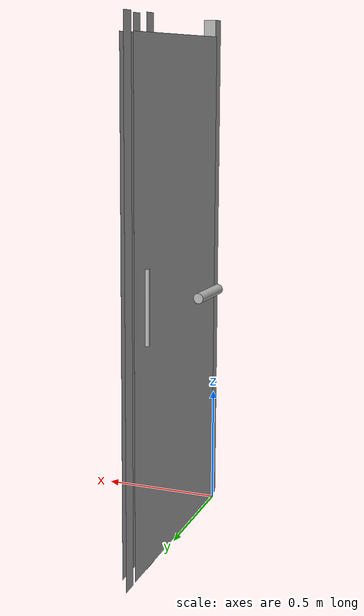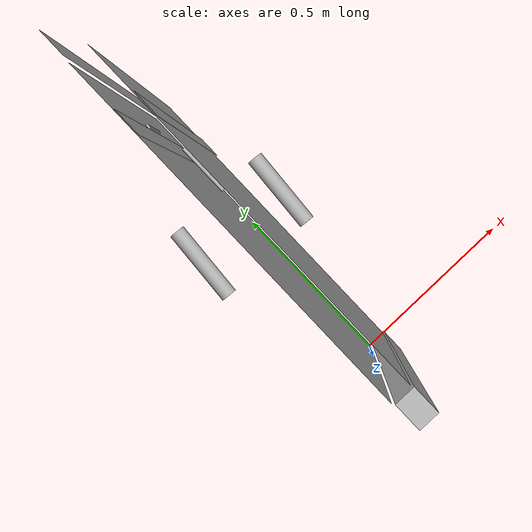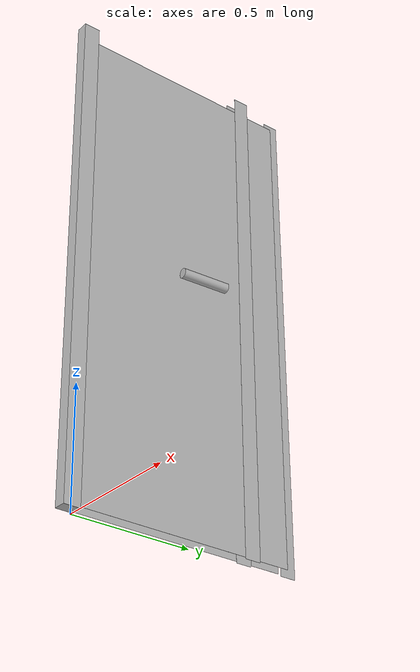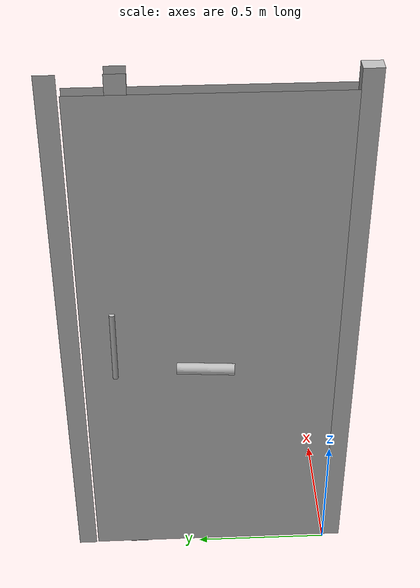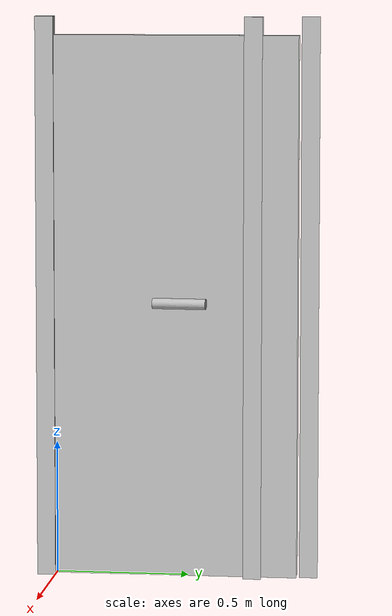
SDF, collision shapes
<?xml version="1.0" ?>
<sdf version="1.5">
  <model name="Hinged_door_narrow">
    <link name="frame">
      <pose>0.06 -0.0005 0 0 0 0</pose>
      <collision name="Door_frame_hinge_side_collison">
        <pose>-0.025145 -0.03429 1.0541 0 0 0</pose>
        <geometry>
          <box>
            <size>0.05029 0.06858 2.10820</size>
          </box>
        </geometry>
      </collision>
      <collision name="Door_frame_lockside_front_collision">
        <pose>-0.05145 0.74631 1.0541 0 0 0</pose>
        <geometry>
          <box>
            <size>0.00005 0.06858 2.10820</size>
          </box>
        </geometry>
      </collision>
      <collision name="Door_frame_lockside_back_collision">
        <pose>0.0 0.74631 1.0541 0 0 0</pose>
        <geometry>
          <box>
            <size>0.00005 0.06858 2.10820</size>
          </box>
        </geometry>
      </collision>
      <collision name="Door_frame_top_collision">
        <pose>-0.05145 0.95631 1.0541 0 0 0</pose>
        <geometry>
          <box>
            <size>0.00005 0.06858 2.10820</size>
          </box>
        </geometry>
      </collision>
      <visual name="visual front">
        <pose>0 -0.06858 0 0 0 0</pose>
        <geometry>
          <mesh>
            <uri>file:///home/jacob/user_ws/src/simulation/tiplu_world/models/Hinged_door_narrow/meshes/frame.dae</uri>
            <scale>1 0.77 1</scale>
          </mesh>
        </geometry>
      </visual>
    </link>
    <link name="door">
      <pose>-0.0 0.000 2.040 3.14159 0 1.57</pose>
      <inertial>
        <mass>41.3256</mass>
        <pose>0.4569 0.0349 1.016 0 0 0</pose>
        <inertia>
          <ixx>14.2053</ixx>
          <ixy>0.0004</ixy>
          <ixz>0.0000</ixz>
          <iyy>17.1997</iyy>
          <iyz>0.0000</iyz>
          <izz>3.0298</izz>
        </inertia>
      </inertial>
      <collision name="door_leaf_side_a_collision">
        <pose>0.4569 0.00349 1.016 0 0 0</pose>
        <geometry>
          <box>
            <size>0.9144 0.00004 2.032</size>
          </box>
        </geometry>
      </collision>
      <collision name="door_leaf_side_b_collision">
        <pose>0.4569 0.0549 1.016 0 0 0</pose>
        <geometry>
          <box>
            <size>0.9144 0.00004 2.032</size>
          </box>
        </geometry>
      </collision>
      <visual name="visual">
        <pose>0 -0.06858 0 0 0 0</pose>
        <geometry>
          <mesh>
            <uri>file:///home/jacob/user_ws/src/simulation/tiplu_world/models/Hinged_door_narrow/meshes/door.dae</uri>
            <scale>0.77 1 1</scale>
          </mesh>
        </geometry>
      </visual>
    </link>
    <link name="handles">
      <pose>0.0 0.8 1.05 0 3.14 1.57</pose>
      <collision name="handle_connecting_rood_collision">
        <gravity>1</gravity>
        <geometry>
          <cylinder>
            <radius>0.01</radius>
            <length>0.29</length>
          </cylinder>
        </geometry>
      </collision>
      <visual name="handle_connecting_rood_visual">
        <pose>0.215 -0.015 0 -1.6 0 0</pose>
        <geometry>
          <cylinder>
            <radius>0.01</radius>
            <length>0.29</length>
          </cylinder>
        </geometry>
      </visual>
      <visual name="handle_bold_visual">
        <pose>0.154 -0.028 0.01 0 1.54 0</pose>
        <geometry>
          <cylinder>
            <radius>0.005</radius>
            <length>0.14</length>
          </cylinder>
        </geometry>
      </visual>
      <collision name="handle_bold_collision">
        <pose>0.154 -0.028 0.01 0 1.54 0</pose>
        <geometry>
          <cylinder>
            <radius>0.005</radius>
            <length>0.14</length>
          </cylinder>
        </geometry>
      </collision>
      <collision name="handle1_handpiece_side_b_collision">
        <pose>0.32 -0.13 0 -1.57 0 -1.5</pose>
        <geometry>
          <cylinder>
            <radius>0.02</radius>
            <length>0.2</length>
          </cylinder>
        </geometry>
      </collision>
      <visual name="handle1_handpiece_side_b_visual">
        <pose>0.32 -0.13 0 -1.57 0 -1.5</pose>
        <geometry>
          <cylinder>
            <radius>0.02</radius>
            <length>0.2</length>
          </cylinder>
        </geometry>
      </visual>
      <collision name="handle1_handpiece_side_a_collision">
        <pose>0.32 0.13 0 -1.57 0 -1.5</pose>
        <geometry>
          <cylinder>
            <radius>0.02</radius>
            <length>0.2</length>
          </cylinder>
        </geometry>
      </collision>
      <visual name="handle1_handpiece_side_a_visual">
        <pose>0.32 0.13 0 -1.57 0 -1.5</pose>
        <geometry>
          <cylinder>
            <radius>0.02</radius>
            <length>0.2</length>
          </cylinder>
        </geometry>
      </visual>

    </link>
    <joint name="handle" type="revolute">
      <parent>door</parent>
      <child>handles</child>
      <pose>0.015 0 0 0 0 0</pose>
      <axis>
        <xyz>1 0 0</xyz>
        <limit>
          <lower>0</lower>
          <upper>1</upper>
        </limit>

        <dynamics>
          <spring_stiffness>50</spring_stiffness>
          <spring_reference>0.0</spring_reference>
          <damping>1.0</damping>
          <friction>10</friction>
        </dynamics>
        <use_parent_model_frame>true</use_parent_model_frame>
      </axis>
      <physics>
        <ode>
          <cfm_damping>1</cfm_damping>
        </ode>
      </physics>
    </joint>
      <plugin filename="libgz-sim-joint-position-controller-system.so" name="gz::sim::systems::JointPositionController">
        <joint_name>handle</joint_name>
        <p_gain>500</p_gain>
        <i_gain>1000</i_gain>
        <d_gain>10</d_gain>
        <i_max>200</i_max>
        <i_min>-200</i_min>
        <cmd_max>1000</cmd_max>
        <cmd_min>-1000</cmd_min>
      </plugin>

    <joint name="hinge" type="revolute">
      <parent>frame</parent>
      <child>door</child>
      <axis>
        <xyz>0 0 1</xyz>
        <limit>
          <lower>0</lower>
          <upper>1.58</upper>
        </limit>
        <dynamics>
          <damping>1.0</damping>
          <friction>10.0</friction>
        </dynamics>
        <use_parent_model_frame>true</use_parent_model_frame>
      </axis>
      <physics>
        <ode>
          <cfm_damping>1</cfm_damping>
        </ode>
      </physics>
    </joint>
      <plugin filename="libgz-sim-joint-position-controller-system.so" name="gz::sim::systems::JointPositionController">
        <joint_name>hinge</joint_name>
        <p_gain>500</p_gain>
        <i_gain>1000</i_gain>
        <d_gain>10</d_gain>
        <i_max>200</i_max>
        <i_min>-200</i_min>
        <cmd_max>1000</cmd_max>
        <cmd_min>-1000</cmd_min>
      </plugin>

    <joint name="world_joint" type="fixed">
      <child>frame</child>
      <parent>world</parent>
      <axis>
        <limit>
          <lower>0</lower>
          <upper>0</upper>
        </limit>
        <xyz>0 1 0</xyz>
        <dynamics>
          <damping>1.0</damping>
        </dynamics>
        <use_parent_model_frame>true</use_parent_model_frame>
      </axis>
      <physics>
        <ode>
          <cfm_damping>1</cfm_damping>
        </ode>
      </physics>
    </joint>
  </model>
</sdf>
